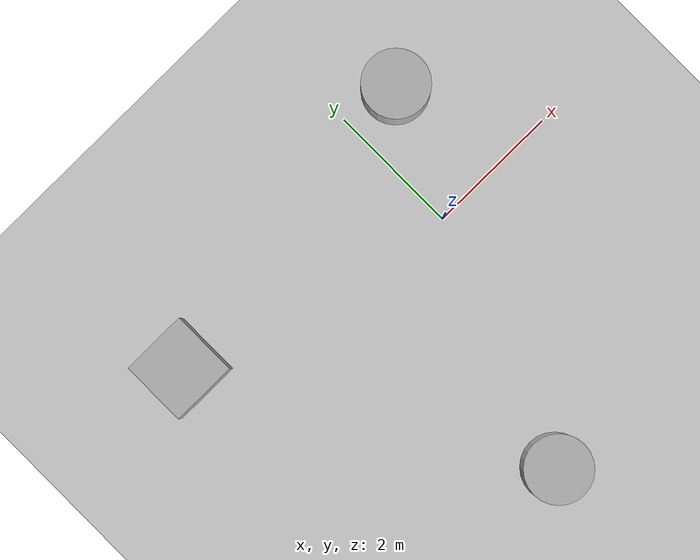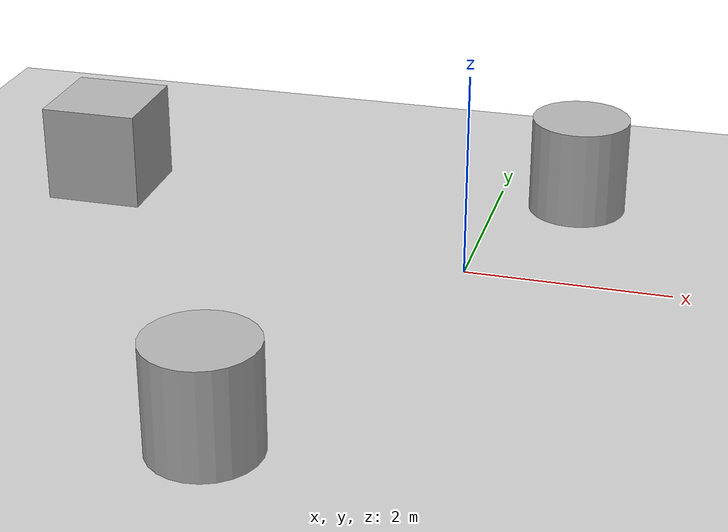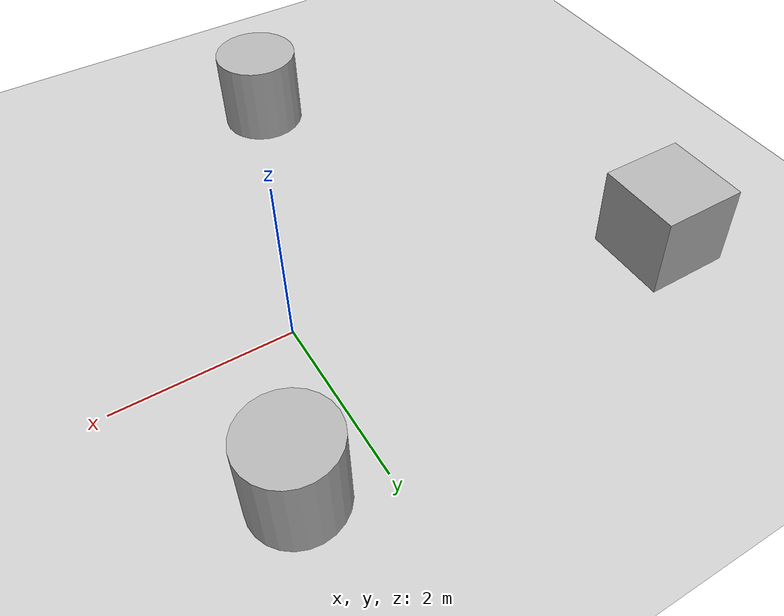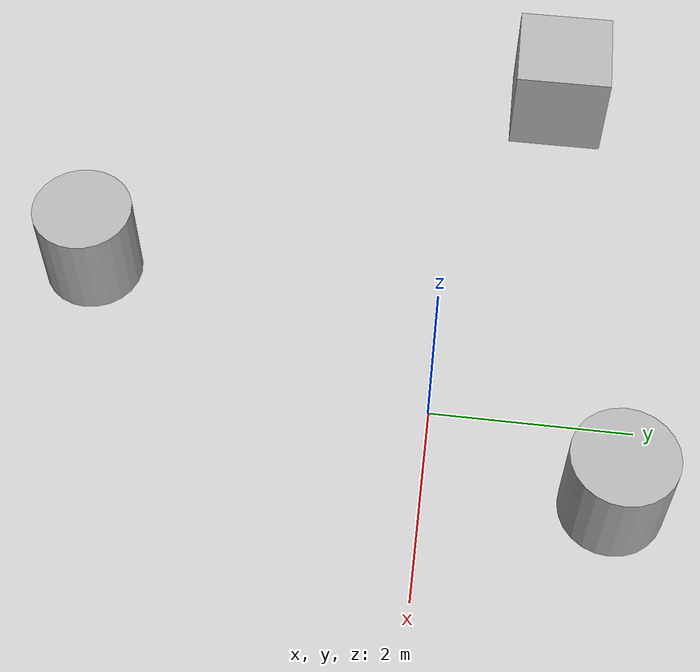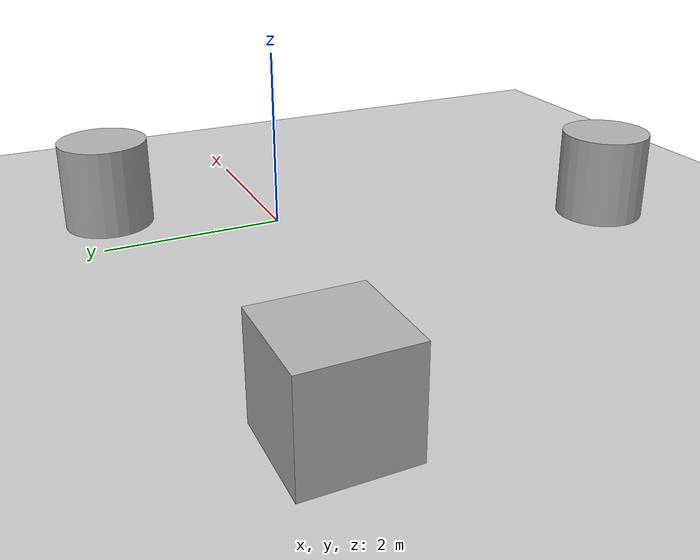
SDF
<sdf version='1.10'>
  <world name='empty_world'>
    <gravity>0 0 -9.8000000000000007</gravity>
    <magnetic_field>5.5644999999999998e-06 2.2875799999999999e-05 -4.2388400000000002e-05</magnetic_field>
    <atmosphere type='adiabatic'/>
    <physics type='ode'>
      <max_step_size>0.001</max_step_size>
      <real_time_factor>1</real_time_factor>
      <real_time_update_rate>1000</real_time_update_rate>
    </physics>
    <scene>
      <ambient>0.400000006 0.400000006 0.400000006 1</ambient>
      <background>0.699999988 0.699999988 0.699999988 1</background>
      <shadows>true</shadows>
    </scene>
    <include>
      <uri>https://fuel.gazebosim.org/1.0/openrobotics/models/Ground Plane</uri>
      <name>ground_plane</name>
      <pose>0 0 0 0 0 0</pose>
    </include>
    <model name='cylinder'>
      <pose>-1.353169095337476 -3.6284025787793706 0.5 0 0 0</pose>
      <link name='cylinder_link'>
        <inertial>
          <inertia>
            <ixx>0.14580000000000001</ixx>
            <ixy>0</ixy>
            <ixz>0</ixz>
            <iyy>0.14580000000000001</iyy>
            <iyz>0</iyz>
            <izz>0.125</izz>
          </inertia>
          <mass>1</mass>
          <pose>0 0 0 0 0 0</pose>
        </inertial>
        <collision name='cylinder_collision'>
          <geometry>
            <cylinder>
              <radius>0.5</radius>
              <length>1</length>
            </cylinder>
          </geometry>
          <surface>
            <friction>
              <ode/>
            </friction>
            <bounce/>
            <contact/>
          </surface>
        </collision>
        <visual name='cylinder_visual'>
          <geometry>
            <cylinder>
              <radius>0.5</radius>
              <length>1</length>
            </cylinder>
          </geometry>
          <material>
            <ambient>0.300000012 0.300000012 0.300000012 1</ambient>
            <diffuse>0.699999988 0.699999988 0.699999988 1</diffuse>
            <specular>1 1 1 1</specular>
          </material>
        </visual>
        <pose>0 0 0 0 0 0</pose>
        <enable_wind>false</enable_wind>
      </link>
      <static>false</static>
      <self_collide>false</self_collide>
    </model>
    <model name='cylinder_0'>
      <pose>0.82111458460372955 1.7855486281627855 0.5 0 0 0</pose>
      <link name='cylinder_link'>
        <inertial>
          <inertia>
            <ixx>0.14580000000000001</ixx>
            <ixy>0</ixy>
            <ixz>0</ixz>
            <iyy>0.14580000000000001</iyy>
            <iyz>0</iyz>
            <izz>0.125</izz>
          </inertia>
          <mass>1</mass>
          <pose>0 0 0 0 0 0</pose>
        </inertial>
        <collision name='cylinder_collision'>
          <geometry>
            <cylinder>
              <radius>0.5</radius>
              <length>1</length>
            </cylinder>
          </geometry>
          <surface>
            <friction>
              <ode/>
            </friction>
            <bounce/>
            <contact/>
          </surface>
        </collision>
        <visual name='cylinder_visual'>
          <geometry>
            <cylinder>
              <radius>0.5</radius>
              <length>1</length>
            </cylinder>
          </geometry>
          <material>
            <ambient>0.300000012 0.300000012 0.300000012 1</ambient>
            <diffuse>0.699999988 0.699999988 0.699999988 1</diffuse>
            <specular>1 1 1 1</specular>
          </material>
        </visual>
        <pose>0 0 0 0 0 0</pose>
        <enable_wind>false</enable_wind>
      </link>
      <static>false</static>
      <self_collide>false</self_collide>
    </model>
    <model name='box'>
      <pose>-4.1228227576916314 1.0898907467213705 0.5 0 0 0</pose>
      <link name='box_link'>
        <inertial>
          <inertia>
            <ixx>0.16666</ixx>
            <ixy>0</ixy>
            <ixz>0</ixz>
            <iyy>0.16666</iyy>
            <iyz>0</iyz>
            <izz>0.16666</izz>
          </inertia>
          <mass>1</mass>
          <pose>0 0 0 0 0 0</pose>
        </inertial>
        <collision name='box_collision'>
          <geometry>
            <box>
              <size>1 1 1</size>
            </box>
          </geometry>
          <surface>
            <friction>
              <ode/>
            </friction>
            <bounce/>
            <contact/>
          </surface>
        </collision>
        <visual name='box_visual'>
          <geometry>
            <box>
              <size>1 1 1</size>
            </box>
          </geometry>
          <material>
            <ambient>0.300000012 0.300000012 0.300000012 1</ambient>
            <diffuse>0.699999988 0.699999988 0.699999988 1</diffuse>
            <specular>1 1 1 1</specular>
          </material>
        </visual>
        <pose>0 0 0 0 0 0</pose>
        <enable_wind>false</enable_wind>
      </link>
      <static>false</static>
      <self_collide>false</self_collide>
    </model>
  </world>
</sdf>
